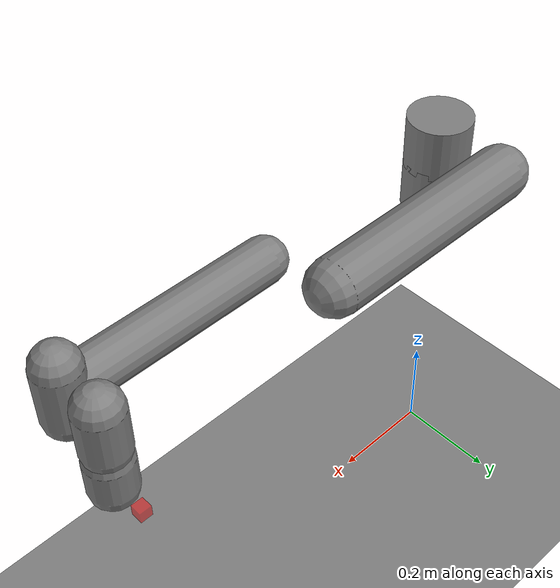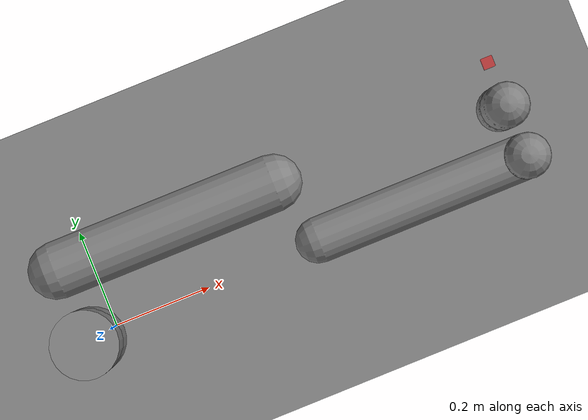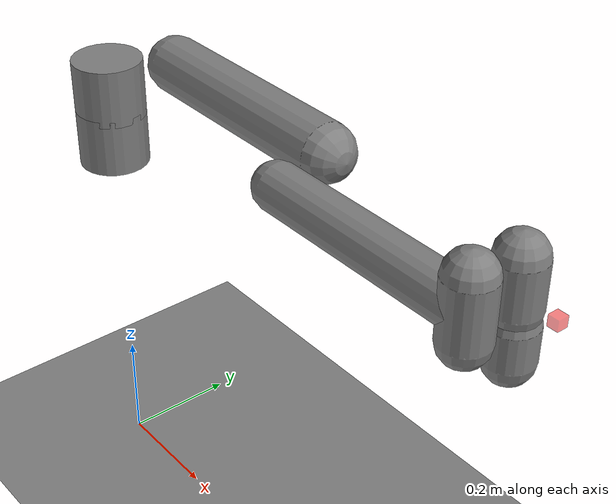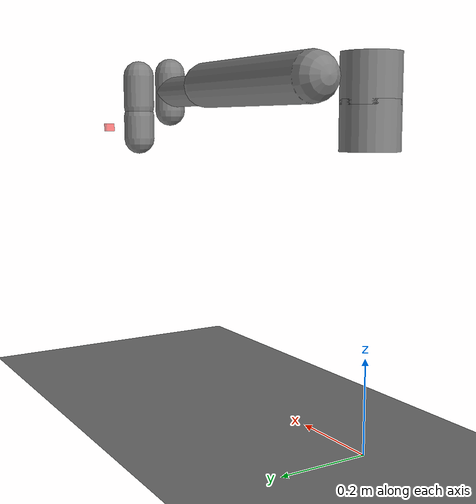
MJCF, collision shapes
<mujoco model="ur5e scene">
  <include file="ur5e.xml"/>

  <statistic center="0.3 0 0.4" extent="0.8"/>

  <visual>
    <headlight diffuse="0.6 0.6 0.6" ambient="0.1 0.1 0.1" specular="0 0 0"/>
    <rgba haze="0.15 0.25 0.35 1"/>
    <global azimuth="120" elevation="-20"/>
  </visual>

  <asset>
    <texture type="skybox" builtin="gradient" rgb1="0.3 0.5 0.7" rgb2="0 0 0" width="512" height="3072"/>
    <texture type="2d" name="groundplane" builtin="checker" mark="edge" rgb1="0.2 0.3 0.4" rgb2="0.1 0.2 0.3"
      markrgb="0.8 0.8 0.8" width="300" height="300"/>
    <material name="groundplane" texture="groundplane" texuniform="true" texrepeat="5 5" reflectance="0.2"/>
  </asset>

  <asset>
        <mesh name="cello_mesh" file="cello.stl" scale="0.002 0.002 0.002"/>
    </asset>

  <worldbody>
    <light pos="0 0 1.5" dir="0 0 -1" directional="false"/>
    <body name="floor" pos="0 0 -0.3">
      <geom name="floor_geom" size="0 0 0.05" type="plane" material="groundplane"/>
    </body>

  </worldbody>
</mujoco>

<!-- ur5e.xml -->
<mujoco model="ur5e">
  <compiler angle="radian" meshdir="assets" autolimits="true"/>

  <option integrator="implicitfast" timestep="2e-3" iterations="10" tolerance="1e-10"/>

  <default>
    <default class="ur5e">
      <material specular="0.5" shininess="0.25"/>
      <joint armature="0.1" damping="65"/>
      <motor ctrlrange="-2 2" gear="101"/>
      <default class="visual">
        <geom type="mesh" contype="0" conaffinity="0" group="2"/>
      </default>
      <default class="collision">
        <geom type="capsule" group="3"/>
      </default>
      <site size="0.001" rgba="0.5 0.5 0.5 0.3" group="4"/>
    </default>
  </default>

  <asset>
    <material class="ur5e" name="black" rgba="0.033 0.033 0.033 1"/>
    <material class="ur5e" name="jointgray" rgba="0.278 0.278 0.278 1"/>
    <material class="ur5e" name="linkgray" rgba="0.82 0.82 0.82 1"/>
    <material class="ur5e" name="urblue" rgba="0.49 0.678 0.8 1"/>
    <material name="floor_mat" rgba="0.5 0.5 0.5 1"/>
    <material name="base_material" rgba="0.8 0.8 0.8 1" shininess="0.9" specular="0.75"/>

    <!-- UR5 meshes -->
    <mesh name="base_mesh" file="Bow Holder Base 1.0.stl"/>
    <mesh name="gripper_mesh" file="Bow Holder Gripper Reorient.stl" />
    <mesh file="base_0.obj"/>
    <mesh file="base_1.obj"/>
    <mesh file="shoulder_0.obj"/>
    <mesh file="shoulder_1.obj"/>
    <mesh file="shoulder_2.obj"/>
    <mesh file="upperarm_0.obj"/>
    <mesh file="upperarm_1.obj"/>
    <mesh file="upperarm_2.obj"/>
    <mesh file="upperarm_3.obj"/>
    <mesh file="forearm_0.obj"/>
    <mesh file="forearm_1.obj"/>
    <mesh file="forearm_2.obj"/>
    <mesh file="forearm_3.obj"/>
    <mesh file="wrist1_0.obj"/>
    <mesh file="wrist1_1.obj"/>
    <mesh file="wrist1_2.obj"/>
    <mesh file="wrist2_0.obj"/>
    <mesh file="wrist2_1.obj"/>
    <mesh file="wrist2_2.obj"/>
    <mesh file="wrist3.obj"/>
  </asset>

  <contact>
    <exclude body1="base_link" body2="shoulder_link"/>
    <exclude body1="shoulder_link" body2="upper_arm_link"/>
    <exclude body1="upper_arm_link" body2="forearm_link"/>
    <exclude body1="forearm_link" body2="wrist_1_link"/>
    <exclude body1="wrist_1_link" body2="wrist_2_link"/>
    <exclude body1="wrist_2_link" body2="wrist_3_link"/>
    <exclude body1="wrist_3_link" body2="ee_link"/>
  </contact>

  <worldbody>
    <light name="spotlight" mode="targetbodycom" target="wrist_2_link" pos="0 -1 2"/>
    <light name="global" pos="0 0 3" dir="0 0 -1" diffuse="0.7 0.7 0.7" specular="0.3 0.3 0.3"/>

    <!-- Floor -->
    <geom name="floor" pos="0 0 0" size="5 5 0.1" type="plane" material="floor_mat" conaffinity="1"/>

    <!-- Box platform -->
    <body name="box_link" pos="0 0 0.0">
      <geom size=".0001 .001 .001" type="box" rgba="0.7 0.7 0.7 1"/>
      <inertial pos="0 0 0" mass="1000" diaginertia="0 0 0"/>

      <!-- Base link must match URDF -->
      <body name="base_link" pos="0 0 0.6604">
        <inertial mass="4.0" pos="0 0 0" diaginertia="0.00443333156 0.00443333156 0.0072"/>
        <geom mesh="base_0" material="black" class="visual"/>
        <geom mesh="base_1" material="jointgray" class="visual"/>
        <geom type="cylinder" size="0.06 0.05" pos="0 0 0" class="collision"/>

        <body name="shoulder_link" pos="0 0 0.089159">
          <inertial mass="3.7" pos="0 0 0" diaginertia="0.010267495893 0.010267495893 0.00666"/>
          <joint name="shoulder_pan_joint" axis="0 0 1" limited="true" range="-3.14159265 3.14159265"/>
          <geom mesh="shoulder_0" material="urblue" class="visual"/>
          <geom mesh="shoulder_1" material="black" class="visual"/>
          <geom mesh="shoulder_2" material="jointgray" class="visual"/>
          <geom type="cylinder" size="0.06 0.05" class="collision"/>

          <body name="upper_arm_link" pos="0 0.13585 0" quat="0.707107 0 0.707107 0">
            <inertial mass="8.393" pos="0 0 0.28" diaginertia="0.22689067591 0.22689067591 0.0151074"/>
            <joint name="shoulder_lift_joint" axis="0 1 0" limited="true" range="-3.14159265 -0.9"/>
            <geom mesh="upperarm_0" material="linkgray" class="visual"/>
            <geom mesh="upperarm_1" material="black" class="visual"/>
            <geom mesh="upperarm_2" material="jointgray" class="visual"/>
            <geom mesh="upperarm_3" material="urblue" class="visual"/>
            <geom type="capsule" size="0.05 0.2" pos="0 0 0.2" class="collision"/>

            <body name="forearm_link" pos="0 -0.1197 0.425">
              <inertial mass="2.275" pos="0 0 0.25" diaginertia="0.049443313556 0.049443313556 0.004095"/>
              <joint name="elbow_joint" axis="0 1 0" limited="true" range="-3.14159265 3.14159265"/>
              <geom mesh="forearm_0" material="urblue" class="visual"/>
              <geom mesh="forearm_1" material="linkgray" class="visual"/>
              <geom mesh="forearm_2" material="black" class="visual"/>
              <geom mesh="forearm_3" material="jointgray" class="visual"/>
              <geom type="capsule" size="0.04 0.19" pos="0 0 0.2" class="collision"/>

              <body name="wrist_1_link" pos="0 0 0.39225" quat="0.707107 0 0.707107 0">
                <inertial mass="1.219" pos="0 0 0" diaginertia="0.111172755531 0.111172755531 0.21942"/>
                <joint name="wrist_1_joint" axis="0 1 0" limited="true" range="-3.14159265 3.14159265"/>
                <geom mesh="wrist1_0" material="black" class="visual"/>
                <geom mesh="wrist1_1" material="urblue" class="visual"/>
                <geom mesh="wrist1_2" material="jointgray" class="visual"/>
                <geom type="capsule" size="0.04 0.05" class="collision"/>

                <body name="wrist_2_link" pos="0 0.093 0">
                  <inertial mass="1.219" pos="0 0 0" diaginertia="0.111172755531 0.111172755531 0.21942"/>
                  <joint name="wrist_2_joint" axis="0 0 1" limited="true" range="-3.14159265 3.14159265"/>
                  <geom mesh="wrist2_0" material="black" class="visual"/>
                  <geom mesh="wrist2_1" material="urblue" class="visual"/>
                  <geom mesh="wrist2_2" material="jointgray" class="visual"/>
                  <geom type="capsule" size="0.04 0.04" class="collision"/>

                  <body name="wrist_3_link" pos="0 0 0.09465">
                    <inertial mass="0.1879" pos="0 0 0" diaginertia="0.0171364731454 0.0171364731454 0.033822"/>
                    <joint name="wrist_3_joint" axis="0 1 0" limited="true" range="-3.14159265 3.14159265"/>
                    <geom material="linkgray" mesh="wrist3" class="visual"/>
                    <geom type="capsule" size="0.04 0.03" class="collision"/>

                    <body name="ee_link" pos="0 0.0823 0" >
                        <inertial pos="-0.01 0 0" mass="0.001" diaginertia="1.66667e-08 1.66667e-08 1.66667e-08"/>
                        <geom size="0.01 0.01 0.01" pos="-0.01 0 0" type="box" rgba="1 0 0 0.5" contype="0" conaffinity="0"/>

                        <!-- This is where a gripper would attach -->

                    </body>
                  </body>
                </body>
              </body>
            </body>
          </body>
        </body>
      </body>
    </body>
  </worldbody>

  <actuator>
    <motor name='shoulder_pan_T' joint='shoulder_pan_joint'/>
    <motor name='shoulder_lift_T' joint='shoulder_lift_joint'/>
    <motor name='forearm_T' joint='elbow_joint'/>
    <motor name='wrist_1_T' joint='wrist_1_joint'/>
    <motor name='wrist_2_T' joint='wrist_2_joint'/>
    <motor name='wrist_3_T' joint='wrist_3_joint'/>
  </actuator>

  <keyframe>
    <key name="home" qpos="0 -1.57 1.57 -1.57 -1.57 0"/>
  </keyframe>
</mujoco>
